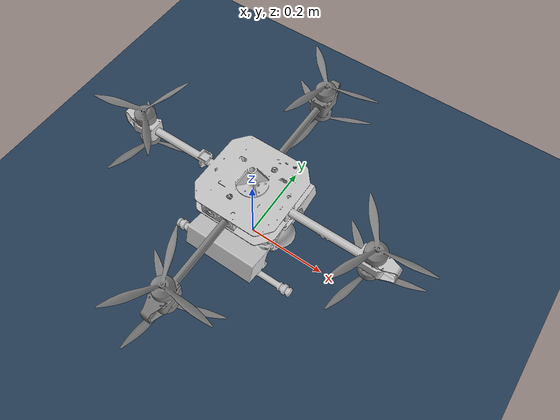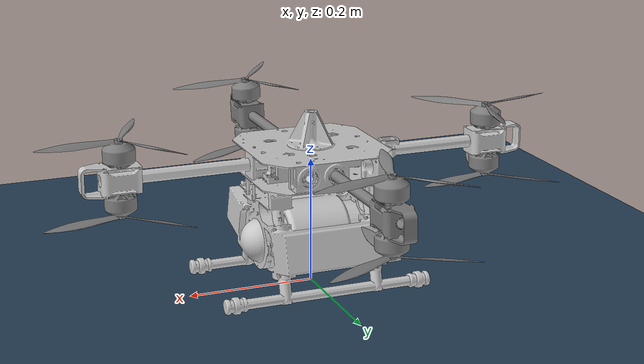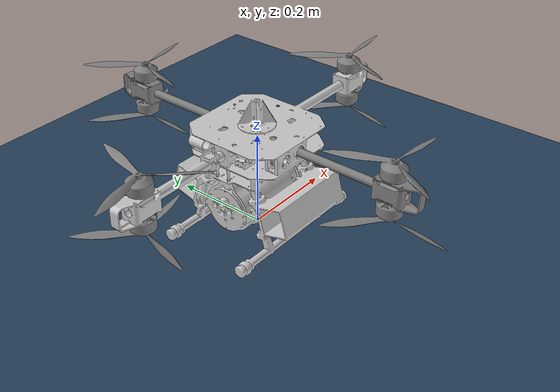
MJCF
<mujoco model="haique_urdf_gen4">
  <!-- Default settings inspired by CF2 quadrotor -->
  <option integrator="RK4" density="1.225" viscosity="1.8e-5" timestep="0.002"/>
  <compiler angle="radian" inertiafromgeom="false" meshdir="/home/popi/haique_urdf_gen4/Quadrotor-NMPC-Control_copy/robots/meshes/" autolimits="true"/>

  <default>
    <default class="haique">
      <default class="visual">
        <geom group="2" type="mesh" contype="0" conaffinity="0"/>
      </default>
      <default class="collision">
        <geom group="3" type="mesh"/>
      </default>
      <site  group="5"/>
    </default>
  </default>

  <asset>
    <mesh name="base_link" file="base_link.STL"/>
    <mesh name="motor0_link" file="motor0_link.STL"/>
    <mesh name="motor4_link" file="motor4_link.STL"/>
    <mesh name="motor2_link" file="motor2_link.STL"/>
    <mesh name="motor6_link" file="motor6_link.STL"/>
    <mesh name="left_arm_link" file="left_arm_link.STL"/>
    <mesh name="motor1_link" file="motor1_link.STL"/>
    <mesh name="motor5_link" file="motor5_link.STL"/>
    <mesh name="right_arm_link" file="right_arm_link.STL"/>
    <mesh name="motor3_link" file="motor3_link.STL"/>
    <mesh name="motor7_link" file="motor7_link.STL"/>
    <texture type="skybox" builtin="gradient" rgb1=".3 .5 .7" rgb2="0 0 0" width="512" height="512"/>
    <texture name="grid" type="2d" builtin="checker" width="512" height="512" rgb1=".1 .2 .3" rgb2=".2 .3 .4"/>
    <material name="grid" texture="grid" texrepeat="1 1" texuniform="true" reflectance=".2"/>
  </asset>

  <visual>
    <map fogstart="1000" fogend="10000" force="0.1" znear="0.1"/>
    <quality shadowsize="4096" offsamples="4"/>
    <headlight ambient="0.4 0.4 0.4"/>
  </visual>

  <worldbody>
    <light diffuse="0.5 0.5 0.5" pos="0 0 3" dir="0 0 -1"/>
    <geom name="floor" pos="0 0 0" size="0 0 0.05" type="plane" material="grid" condim="3"/>

    <!-- Top-level free-floating body -->
    <body name="robot" pos="0 0 0.2013" childclass="haique">
      <freejoint/>

      <!-- Base link body -->
      <body name="base_link" pos="0 0 0">
        <inertial pos="-0.00140375 0.00062119 -0.04602845" quat="1 0 0 0" mass="3.28806956" diaginertia="0.10359101 0.10411340 0.16095823"/>
        <geom class="visual" rgba="0.8 0.8 0.8 1" mesh="base_link"/>
        <geom class="collision" rgba="0.8 0.8 0.8 1" mesh="base_link"/>
        <!-- IMU sensor site -->
        <site name="imu" pos="0 0 0" size="0.005" rgba="0 1 0 1"/>
      </body>
      <body name="motor0_link" pos="0.3025 -0.0015 0.02">
        <inertial pos="0 0 0.019082" quat="0.5 0.5 -0.5 0.5" mass="0.151298" diaginertia="7.93e-05 5.39e-05 5.39e-05"/>
        <joint name="motor0_joint" pos="0 0 0" axis="0 0 1" range="0 3.1416"/>
        <geom class="visual" mesh="motor0_link"/>
        <geom class="collision" mesh="motor0_link"/>
      </body>
      <site name="motor0_site" pos="0.3025 -0.0015 0.061"  size="0.01" rgba="1 0 0 1"/>
      <body name="motor4_link" pos="0.3025 -0.0015 -0.02">
        <inertial pos="0 0 -0.019082" quat="0.5 0.5 -0.5 0.5" mass="0.151298" diaginertia="7.93e-05 5.39e-05 5.39e-05"/>
        <joint name="motor4_joint" pos="0 0 0" axis="0 0 1" range="0 3.1416"/>
        <geom class="visual" mesh="motor4_link"/>
        <geom class="collision" mesh="motor4_link"/>
      </body>
      <site name="motor4_site" pos="0.3025 -0.0015 -0.061"  size="0.01" rgba="1 0 0 1"/>
      <body name="motor2_link" pos="-0.3025 0.0015 0.02">
        <inertial pos="0 0 0.019082" quat="0.5 0.5 -0.5 0.5" mass="0.151298" diaginertia="7.93e-05 5.39e-05 5.39e-05"/>
        <joint name="motor2_joint" pos="0 0 0" axis="0 0 1" range="0 3.1416"/>
        <geom class="visual" mesh="motor2_link"/>
        <geom class="collision" mesh="motor2_link"/>
      </body>
      <site name="motor2_site" pos="-0.3025 0.0015 0.061"  size="0.01" rgba="1 0 0 1"/>
      <body name="motor6_link" pos="-0.3025 0.0015 -0.02">
        <inertial pos="0 0 -0.019082" quat="0.5 0.5 -0.5 0.5" mass="0.151298" diaginertia="7.93e-05 5.39e-05 5.39e-05"/>
        <joint name="motor6_joint" pos="0 0 0" axis="0 0 1" range="0 3.1416"/>
        <geom class="visual" mesh="motor6_link"/>
        <geom class="collision" mesh="motor6_link"/>
      </body>
      <site name="motor6_site" pos="-0.3025 0.0015 -0.061"  size="0.01" rgba="1 0 0 1"/>
      <body name="left_arm_link" pos="0 0.1015 0">
        <inertial pos="-2.04e-06 0.159654 1.14e-05" quat="0.707008 0.707096 0.0087542 -0.0087967" mass="0.0869367" diaginertia="0.000672621 0.000671009 2.36e-05"/>
        <joint name="left_arm_joint" pos="0 0 0" axis="0 1 0" range="0 3.1416" damping="0.5" armature="0.01"/>
        <geom class="visual" mesh="left_arm_link"/>
        <geom class="collision" mesh="left_arm_link"/>
        <body name="motor1_link" pos="0.000462356 0.2005 0.0199947">
          <inertial pos="0.00044097 0 0.0190769" quat="0.505792 0.505792 -0.49414 0.49414" mass="0.151298" diaginertia="7.93138e-05 5.39862e-05 5.39e-05"/>
          <joint name="motor1_joint" pos="0 0 0" axis="-0.0231178 0 -0.999733" range="0 3.1416"/>
          <geom class="visual" mesh="motor1_link"/>
          <geom class="collision" mesh="motor1_link"/>
        </body>
        <body name="motor5_link" pos="-0.000462356 0.2005 -0.0199947">
          <inertial pos="-0.00044099 0 -0.0190769" quat="0.505792 0.505792 -0.49414 0.49414" mass="0.151298" diaginertia="7.93138e-05 5.39862e-05 5.39e-05"/>
          <joint name="motor5_joint" pos="0 0 0" axis="0.0231178 0 0.999733" range="0 3.1416"/>
          <geom class="visual" mesh="motor5_link"/>
          <geom class="collision" mesh="motor5_link"/>
        </body>
        <site name="motor1_site" pos="0.000462356 0.2005 0.061"  size="0.01" rgba="1 0 0 1"/>
        <site name="motor5_site" pos="-0.000462356 0.2005 -0.061"  size="0.01" rgba="1 0 0 1"/>
      </body>
      <body name="right_arm_link" pos="0 -0.1015 0">
        <inertial pos="1.57e-06 -0.159654 -1.045e-05" quat="0.706783 0.706883 0.0196581 -0.0196989" mass="0.0869367" diaginertia="0.000672625 0.000671005 2.356e-05"/>
        <joint name="right_arm_joint" pos="0 0 0" axis="0 1 0" range="0 3.1416" damping="0.5" armature="0.01"/>
        <geom class="visual" mesh="right_arm_link"/>
        <geom class="collision" mesh="right_arm_link"/>
        <body name="motor3_link" pos="0.00115134 -0.2005 0.0199668">
          <inertial pos="0.00109833 0 0.0190503" quat="0.51421 0.51421 -0.485374 0.485374" mass="0.151298" diaginertia="7.92843e-05 5.39157e-05 5.39e-05"/>
          <joint name="motor3_joint" pos="0 0 0" axis="-0.0575668 0 -0.998342" range="0 3.1416"/>
          <geom class="visual" mesh="motor3_link"/>
          <geom class="collision" mesh="motor3_link"/>
        </body>
        <site name="motor3_site" pos="0.00115134 -0.2005 0.061" size="0.01" rgba="1 0 0 1"/>
        <body name="motor7_link" pos="-0.00115134 -0.2005 -0.0199668">
          <inertial pos="-0.00109849 0 -0.0190503" quat="0.51421 0.51421 -0.485374 0.485374" mass="0.151298" diaginertia="7.92843e-05 5.39157e-05 5.39e-05"/>
          <joint name="motor7_joint" pos="0 0 0" axis="0.0575668 0 0.998342" range="0 3.1416"/>
          <geom class="visual" mesh="motor7_link"/>
          <geom class="collision" mesh="motor7_link"/>
        </body>
        <site name="motor7_site" pos="-0.00115134 -0.2005 -0.061" size="0.01" rgba="1 0 0 1"/>
      </body>
    </body>
  </worldbody>

  <actuator>
    <!-- Joint actuators for motor rotation -->
    <motor name="motor0" joint="motor0_joint"/>
    <motor name="motor1" joint="motor1_joint"/>
    <motor name="motor2" joint="motor2_joint"/>
    <motor name="motor3" joint="motor3_joint"/>
    <motor name="motor4" joint="motor4_joint"/>
    <motor name="motor5" joint="motor5_joint"/>
    <motor name="motor6" joint="motor6_joint"/>
    <motor name="motor7" joint="motor7_joint"/>

    <!-- Arm servo actuators -->
    <position name="left_servo"  joint="left_arm_joint"   kp="8" kv="2.0"/>
    <position name="right_servo" joint="right_arm_joint"  kp="8" kv="2.0"/>

    <motor class="haique" ctrlrange="0 1" gear="0 0 24 0 0 -1.0" site="motor0_site" name="prop_motor0"/><!-- Front上,CW -->
    <motor class="haique" ctrlrange="0 1" gear="0 0 24 0 0  1.0" site="motor1_site" name="prop_motor1"/><!-- Left上,CCW -->
    <motor class="haique" ctrlrange="0 1" gear="0 0 24 0 0 -1.0" site="motor2_site" name="prop_motor2"/><!-- Rear上,CW -->
    <motor class="haique" ctrlrange="0 1" gear="0 0 24 0 0  1.0" site="motor3_site" name="prop_motor3"/><!-- Right上,CCW -->
    <motor class="haique" ctrlrange="0 1" gear="0 0 24 0 0  1.0" site="motor4_site" name="prop_motor4"/><!-- Front下,CCW -->
    <motor class="haique" ctrlrange="0 1" gear="0 0 24 0 0 -1.0" site="motor5_site" name="prop_motor5"/><!-- Left下,CW -->
    <motor class="haique" ctrlrange="0 1" gear="0 0 24 0 0  1.0" site="motor6_site" name="prop_motor6"/><!-- Rear下,CCW -->
    <motor class="haique" ctrlrange="0 1" gear="0 0 24 0 0 -1.0" site="motor7_site" name="prop_motor7"/><!-- Right下,CW -->

  </actuator>

  <sensor>
    <!-- IMU sensors at base_link -->
    <gyro name="gyro" site="imu" noise="0.005" cutoff="30"/>
    <accelerometer name="accelerometer" site="imu" noise="0.05" cutoff="30"/>
    <framequat name="orientation" objtype="site" objname="imu"/>
  </sensor>
</mujoco>
